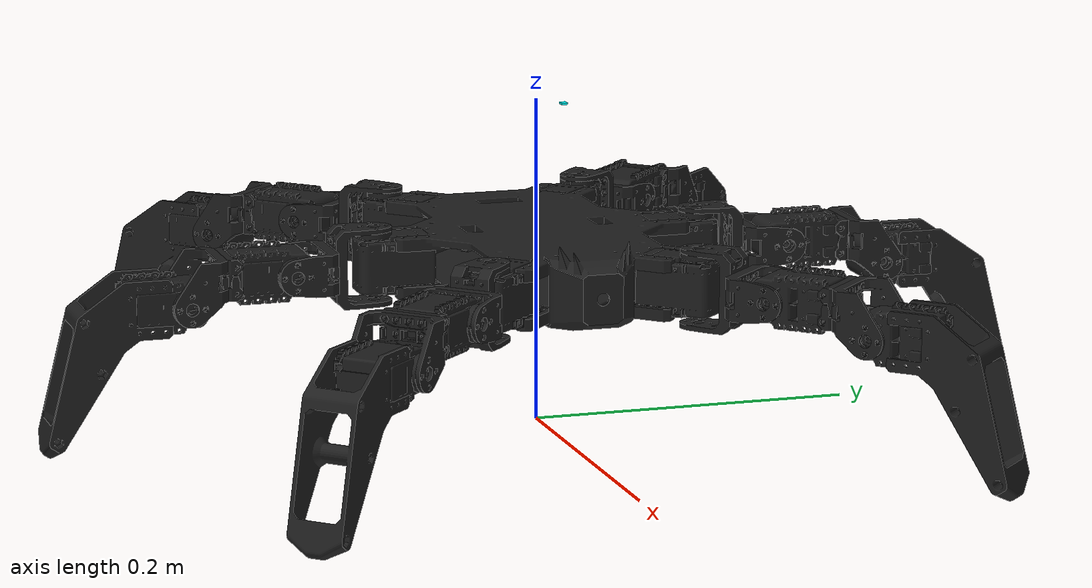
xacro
<?xml version="1.0"?>
<robot name="dr_qp" xmlns:xacro="http://ros.org/wiki/xacro">
  <xacro:arg name="robot_name" default = "dr_qp"/>
  <xacro:arg name="hardware_device_address" default="/dev/ttySC0"/>
  <xacro:arg name="use_gazebo" default="false" />

  <material name="drqp_black">
    <texture filename="package://drqp_control/meshes/drqp_black.png"/>
  </material>

  <xacro:property name="robot_height" value="0.085" />

  <xacro:include filename="$(find drqp_control)/urdf/body.urdf.xacro"/>
  <xacro:include filename="$(find drqp_control)/urdf/leg.urdf.xacro"/>

  <xacro:leg robot_name="$(arg robot_name)" prefix="left_front" x="0.11692" y="0.06387" yaw="${pi/4}"/>
  <xacro:leg robot_name="$(arg robot_name)" prefix="right_front" x="0.11692" y="-0.06387" yaw="${-pi/4}"/>

  <xacro:leg robot_name="$(arg robot_name)" prefix="left_middle" x="0" y="0.103" yaw="${pi/2}"/>
  <xacro:leg robot_name="$(arg robot_name)" prefix="right_middle" x="0" y="-0.103" yaw="${-pi/2}"/>

  <xacro:leg robot_name="$(arg robot_name)" prefix="left_back" x="-0.11692" y="0.06387" yaw="${3*pi/4}"/>
  <xacro:leg robot_name="$(arg robot_name)" prefix="right_back" x="-0.11692" y="-0.06387" yaw="${-3*pi/4}"/>

  <link name="ground" />
  <joint name="ground_to_base_link" type="fixed">
      <origin rpy="0 0 0" xyz="0 0 ${robot_height}"/>
      <parent link="ground"/>
      <child link="$(arg robot_name)/base_link"/>
  </joint>

  <xacro:include filename="$(find drqp_control)/urdf/ros2_control.urdf.xacro"/>
  <xacro:drqp_ros2_control robot_name="$(arg robot_name)" device_address="$(arg hardware_device_address)" use_gazebo="$(arg use_gazebo)" />

  <xacro:if value="$(arg use_gazebo)">
    <xacro:include filename="$(find drqp_control)/urdf/gazebo.xacro"/>
    <xacro:gazebo robot_name="$(arg robot_name)" />
  </xacro:if>

  <gazebo>
    <self_collide>true</self_collide>

    <!-- Params copied from https://www.youtube.com/watch?v=Gp3DF97yN7k&list=PL_0ePxMRfT22elbjPCf36MS02d6TK2sSk&index=1 -->
    <mu1>50</mu1>
    <mu2>25</mu2>
    <kp>25000</kp>
    <kd>0.05</kd>
  </gazebo>
</robot>

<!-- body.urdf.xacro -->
<robot name="drqp" xmlns:xacro="http://ros.org/wiki/xacro">

  <xacro:property name="body_height" value="0.037" />

  <link name="$(arg robot_name)/base_center_link">
    <visual>
      <origin xyz="0 0 -${body_height/2}" rpy="${pi/2} 0 ${pi}" />
      <geometry>
        <mesh filename="package://drqp_control/meshes/body-simple.stl" />
      </geometry>
      <material name="drqp_black"/>
    </visual>
    <collision>
      <origin xyz="0 0 -${body_height/2}" rpy="0 0 0" />
      <geometry>
        <mesh filename="package://drqp_control/meshes/body-collision.stl" />
      </geometry>
    </collision>
    <inertial>
      <origin rpy="0 0 0" xyz="0.001522 0.000302 0.015345"/>
      <mass value="1.522054" />
      <inertia ixx="0.0044660000" iyy="0.0084890000" izz="0.0092020000" ixy="0.0000076888" ixz="-0.0001245000" iyz="0.0000050996" />
    </inertial>
  </link>

  <link name="$(arg robot_name)/base_link" /> <!-- Robot base lowest point -->

  <joint name="base_bottom" type="fixed">
    <origin rpy="0 0 0" xyz="0 0 ${body_height/2}"/>
    <parent link="$(arg robot_name)/base_link"/>
    <child link="$(arg robot_name)/base_center_link"/>
  </joint>

  <joint name="base_bottom_to_camera" type="fixed">
    <origin rpy="0 0 0" xyz="0.132 0 0"/>
    <parent link="$(arg robot_name)/base_center_link"/>
    <child link="$(arg robot_name)/camera"/>
  </joint>

  <link name="$(arg robot_name)/camera">
  </link>

  <joint name="base_center_to_imu" type="fixed">
    <origin rpy="${pi} 0 ${pi/2}" xyz="0.054633 0 0.103"/>
    <parent link="$(arg robot_name)/base_center_link"/>
    <child link="$(arg robot_name)/imu_link"/>
  </joint>

  <link name="$(arg robot_name)/imu_link">
     <visual>
      <geometry>
          <!-- Chip footprint 3.8 mm x 5.2 mm, height 1.13 mm, X axis along short side -->
          <box size="0.0038 0.0052 0.00113" />
      </geometry>
      <material name="imu_material">
        <color rgba="0 1 1 1"/>
      </material>
     </visual>
  </link>

</robot>

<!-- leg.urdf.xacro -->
<robot xmlns:xacro="http://ros.org/wiki/xacro">
  <xacro:include filename="$(find drqp_control)/urdf/inertial_macros.xacro"/>
  <xacro:macro name="inertial_stub" params="">
    <xacro:property name="tiny_value" value="0.01"/>
    <xacro:inertial_box mass="${tiny_value}" x="${tiny_value}" y="${tiny_value}" z="${tiny_value}">
      <origin xyz="0 0 0" rpy="0 0 0"/>
    </xacro:inertial_box>
  </xacro:macro>

  <xacro:macro name="leg" params="robot_name prefix x y yaw">

  <joint name="${robot_name}/${prefix}_coxa_servo_joint" type="fixed">
    <origin rpy="0 0 ${yaw}" xyz="${x} ${y} 0"/>
    <parent link="${robot_name}/base_center_link"/>
    <child link="${robot_name}/${prefix}_coxa_servo"/>
  </joint>

  <link name="${robot_name}/${prefix}_coxa_servo">
    <visual>
      <origin xyz="0 0 0" rpy="0 0 ${-pi/2}" />
      <geometry>
        <mesh filename="package://drqp_control/meshes/servo.stl" />
      </geometry>
      <material name="drqp_black"/>
    </visual>
    <collision>
      <origin xyz="0 0 0" rpy="0 0 ${-pi/2}" />
      <geometry>
        <mesh filename="package://drqp_control/meshes/servo-collision.stl" />
      </geometry>
    </collision>
    <inertial>
      <origin rpy="0 0 0" xyz="0.019066 -0.000002 0.006577"/>
      <mass value="0.02471" />
      <inertia ixx="0.0000215400" iyy="0.00002657000" izz="0.00002925000" ixy="-0.00000000122" ixz="-0.00000192741" iyz="-0.00000000001" />
    </inertial>
  </link>

  <joint name="${robot_name}/${prefix}_coxa" type="revolute">
    <axis xyz="0 0 1"/>
    <limit effort="3" lower="${radians(-90)}" upper="${radians(90)}" velocity="${pi}"/>
    <parent link="${robot_name}/${prefix}_coxa_servo"/>
    <child link="${robot_name}/${prefix}_coxa_f2_link_1"/>
  </joint>
  <gazebo reference="${robot_name}/${prefix}_coxa">
    <dampingFactor>0.04</dampingFactor>
    <implicitSpringDamper>true</implicitSpringDamper>
    <springReference>0.01</springReference>
  </gazebo>

  <link name="${robot_name}/${prefix}_coxa_f2_link_1">
    <visual>
      <origin rpy="0 0 ${pi/2}" xyz="0 0 0"/>
      <geometry>
        <mesh filename="package://drqp_control/meshes/F2.stl" />
      </geometry>
      <material name="drqp_black"/>
    </visual>
    <collision>
      <origin rpy="0 0 ${pi/2}" xyz="0 0 0"/>
      <geometry>
        <mesh filename="package://drqp_control/meshes/F2-collision.stl" />
      </geometry>
    </collision>
    <xacro:inertial_stub />
  </link>
  <joint name="${robot_name}/${prefix}_coxa_inner" type="fixed">
    <origin rpy="0 0 0" xyz="${0.0265 * 2} 0 0"/>
    <parent link="${robot_name}/${prefix}_coxa_f2_link_1"/>
    <child link="${robot_name}/${prefix}_coxa_f2_link_2"/>
  </joint>

  <link name="${robot_name}/${prefix}_coxa_f2_link_2">
    <visual>
      <origin rpy="0 ${pi/2} ${-pi/2}" xyz="0 0 0"/>
      <geometry>
        <mesh filename="package://drqp_control/meshes/F2.stl" />
      </geometry>
      <material name="drqp_black"/>
    </visual>
    <collision>
      <origin rpy="0 ${pi/2} ${-pi/2}" xyz="0 0 0"/>
      <geometry>
        <mesh filename="package://drqp_control/meshes/F2-collision.stl" />
      </geometry>
    </collision>
    <xacro:inertial_stub />
  </link>

  <joint name="${robot_name}/${prefix}_femur" type="revolute">
    <axis xyz="0 1 0"/>
    <limit effort="3" lower="${radians(-98)}" upper="${radians(90)}" velocity="${pi}"/>
    <origin rpy="0 0 0" xyz="0 0 0"/>
    <parent link="${robot_name}/${prefix}_coxa_f2_link_2"/>
    <child link="${robot_name}/${prefix}_femur_servo"/>
  </joint>
  <gazebo reference="${robot_name}/${prefix}_femur">
    <dampingFactor>0.04</dampingFactor>
    <implicitSpringDamper>true</implicitSpringDamper>
    <springReference>0.01</springReference>
  </gazebo>

  <link name="${robot_name}/${prefix}_femur_servo">
    <visual>
      <origin rpy="0 ${pi/2} ${pi/2}" xyz="0 0 0" />
      <geometry>
        <!--
          Origin is at the actuator center
          36mm - distance from actuator center to the center of the holes on the back
         -->
        <mesh filename="package://drqp_control/meshes/servo.stl" />
      </geometry>
      <material name="drqp_black"/>
    </visual>
    <collision>
      <origin rpy="0 ${pi/2} ${pi/2}" xyz="0 0 0" />
      <geometry>
        <mesh filename="package://drqp_control/meshes/servo-collision.stl" />
      </geometry>
    </collision>
    <inertial>
      <origin rpy="0 0 0" xyz="0.019066 -0.000002 0.006577"/>
      <mass value="0.02471" />
      <inertia ixx="0.0000215400" iyy="0.00002657000" izz="0.00002925000" ixy="-0.00000000122" ixz="-0.00000192741" iyz="-0.00000000001" />
    </inertial>
  </link>

  <joint name="${robot_name}/${prefix}_femur_inner_1" type="fixed">
    <origin rpy="0 0 0" xyz="${0.036 + 0.0055} 0 0"/>
    <parent link="${robot_name}/${prefix}_femur_servo"/>
    <child link="${robot_name}/${prefix}_femur_link_f3"/>
  </joint>

  <link name="${robot_name}/${prefix}_femur_link_f3">
    <visual>
      <origin rpy="0 ${pi/2} ${pi/2}" xyz="0 0 0"/>
      <geometry>
        <!--
          Origin is at the center of the flat plane
          5.5mm - distance from origin to center of the side mounting holes
         -->
        <mesh filename="package://drqp_control/meshes/F3.stl" />
      </geometry>
      <material name="drqp_black"/>
    </visual>
    <collision>
      <origin rpy="0 ${pi/2} ${pi/2}" xyz="0 0 0"/>
      <geometry>
        <mesh filename="package://drqp_control/meshes/F3-collision.stl" />
      </geometry>
    </collision>
    <xacro:inertial_stub />
  </link>

  <joint name="${robot_name}/${prefix}_femur_inner_2" type="fixed">
    <origin rpy="0 0 0" xyz="0.023 0 -0.015"/>
    <parent link="${robot_name}/${prefix}_femur_link_f3"/>
    <child link="${robot_name}/${prefix}_femur_link_f1"/>
  </joint>

  <link name="${robot_name}/${prefix}_femur_link_f1">
    <visual>
      <origin rpy="${pi} ${-pi/2} ${pi/2}" xyz="0 0 0"/>
      <geometry>
        <mesh filename="package://drqp_control/meshes/F1.stl" />
      </geometry>
      <material name="drqp_black"/>
    </visual>
    <collision>
      <origin rpy="${pi} ${-pi/2} ${pi/2}" xyz="0 0 0"/>
      <geometry>
        <mesh filename="package://drqp_control/meshes/F1-collision.stl" />
      </geometry>
    </collision>
    <xacro:inertial_stub />
  </link>

  <joint name="${robot_name}/${prefix}_tibia" type="revolute">
    <axis xyz="0 1 0"/>
    <limit effort="3" lower="${radians(-80)}" upper="${radians(110)}" velocity="${pi}"/>
    <origin rpy="0 0 0" xyz="0 0 0"/>
    <parent link="${robot_name}/${prefix}_femur_link_f1"/>
    <child link="${robot_name}/${prefix}_tibia_servo"/>
  </joint>
  <gazebo reference="${robot_name}/${prefix}_tibia">
    <dampingFactor>0.04</dampingFactor>
    <implicitSpringDamper>true</implicitSpringDamper>
    <springReference>0.01</springReference>
  </gazebo>

  <link name="${robot_name}/${prefix}_tibia_servo">
    <visual>
      <origin rpy="0 ${pi/2} ${pi/2}" xyz="0 0 0" />
      <geometry>
        <mesh filename="package://drqp_control/meshes/servo.stl" />
      </geometry>
      <material name="drqp_black"/>
    </visual>
    <collision>
      <origin rpy="0 ${pi/2} ${pi/2}" xyz="0 0 0" />
      <geometry>
        <mesh filename="package://drqp_control/meshes/servo-collision.stl" />
      </geometry>
    </collision>
    <inertial>
      <origin rpy="0 0 0" xyz="0.036797 0.000054 -0.011991"/>
      <mass value="0.171825" />
      <inertia ixx="0.0001762000" iyy="0.0005158000" izz="0.0003768000" ixy="-0.0000014522" ixz="0.0001789000" iyz="0.0000006181" />
    </inertial>
  </link>

  <joint name="${robot_name}/${prefix}_tibia_leg_joint" type="fixed">
    <origin rpy="0 0 0" xyz="0.0325 0 0"/>
    <parent link="${robot_name}/${prefix}_tibia_servo"/>
    <child link="${robot_name}/${prefix}_tibia_leg"/>
  </joint>

  <link name="${robot_name}/${prefix}_tibia_leg">
    <visual>
      <origin rpy="0 0 0" xyz="0 0 0"/>
      <geometry>
        <!--
          Origin is at end servo attachment, 32.5 between servo pivot and this point
         -->
        <mesh filename="package://drqp_control/meshes/Tibia.stl" />
      </geometry>
      <material name="drqp_black"/>
    </visual>
    <collision>
      <origin rpy="0 0 0" xyz="0 0 0"/>
      <geometry>
        <mesh filename="package://drqp_control/meshes/Tibia-collision.stl" />
      </geometry>
    </collision>
    <xacro:inertial_stub />
  </link>

  <joint name="${robot_name}/${prefix}_foot" type="fixed">
    <origin rpy="0 0 0" xyz="0.052797 0 -0.088395"/>
    <parent link="${robot_name}/${prefix}_tibia_leg"/>
    <child link="${robot_name}/${prefix}_foot_link"/>
  </joint>

  <link name="${robot_name}/${prefix}_foot_link"/>

</xacro:macro>
</robot>
